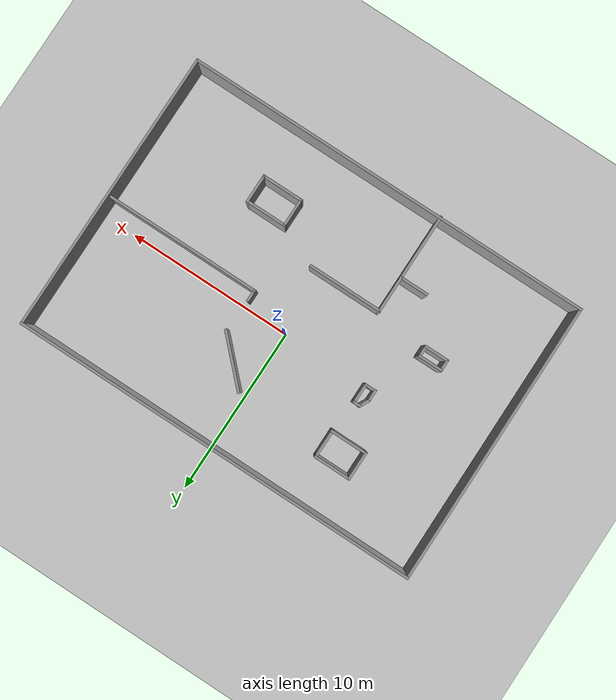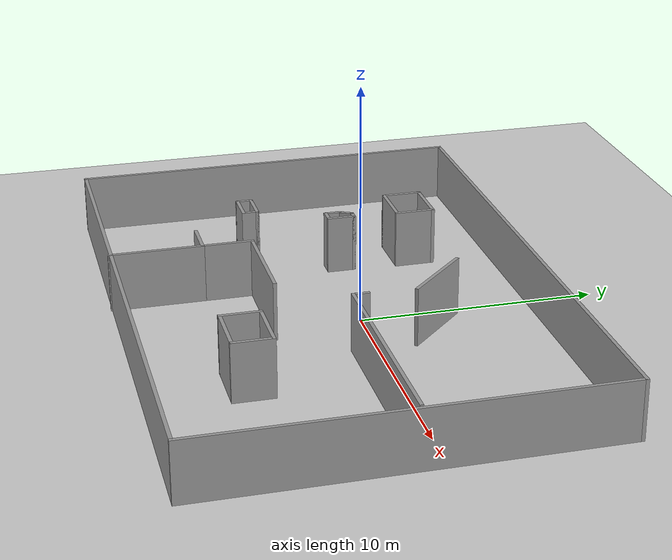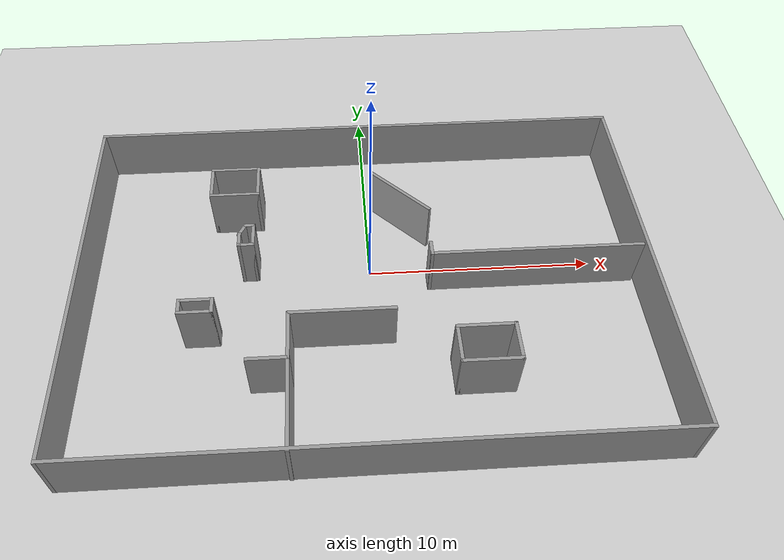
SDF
<?xml version="1.0" ?>
<sdf version="1.5">
  <world name="default">
    <!-- A global light source -->
    <include>
      <uri>model://sun</uri>
    </include>
    <!-- A ground plane -->
    <include>
      <uri>model://ground_plane</uri>
    </include>

    <include>
      <uri>model://slam_test_world/model.sdf</uri>
    </include>

  </world>
</sdf>

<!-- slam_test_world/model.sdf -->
<sdf version='1.6'>
  <model name='slam_test_world'>
    <pose frame=''>-0.236046 -1.23604 0 0 -0 0</pose>
    <link name='Wall_14'>
      <collision name='Wall_14_Collision'>
        <geometry>
          <box>
            <size>17 0.15 2.5</size>
          </box>
        </geometry>
        <pose frame=''>0 0 1.25 0 -0 0</pose>
      </collision>
      <visual name='Wall_14_Visual'>
        <pose frame=''>0 0 1.25 0 -0 0</pose>
        <geometry>
          <box>
            <size>17 0.15 2.5</size>
          </box>
        </geometry>
        <material>
          <script>
            <uri>file://media/materials/scripts/gazebo.material</uri>
            <name>Gazebo/Grey</name>
          </script>
          <ambient>1 1 1 1</ambient>
        </material>
        <meta>
          <layer>0</layer>
        </meta>
      </visual>
      <pose frame=''>-12.175 0.024197 0 0 -0 -1.5708</pose>
    </link>
    <link name='Wall_15'>
      <collision name='Wall_15_Collision'>
        <geometry>
          <box>
            <size>24.5 0.15 2.5</size>
          </box>
        </geometry>
        <pose frame=''>0 0 1.25 0 -0 0</pose>
      </collision>
      <visual name='Wall_15_Visual'>
        <pose frame=''>0 0 1.25 0 -0 0</pose>
        <geometry>
          <box>
            <size>24.5 0.15 2.5</size>
          </box>
        </geometry>
        <material>
          <script>
            <uri>file://media/materials/scripts/gazebo.material</uri>
            <name>Gazebo/Grey</name>
          </script>
          <ambient>1 1 1 1</ambient>
        </material>
        <meta>
          <layer>0</layer>
        </meta>
      </visual>
      <pose frame=''>-0 -8.4008 0 0 -0 0</pose>
    </link>
    <link name='Wall_16'>
      <collision name='Wall_16_Collision'>
        <geometry>
          <box>
            <size>17 0.15 2.5</size>
          </box>
        </geometry>
        <pose frame=''>0 0 1.25 0 -0 0</pose>
      </collision>
      <visual name='Wall_16_Visual'>
        <pose frame=''>0 0 1.25 0 -0 0</pose>
        <geometry>
          <box>
            <size>17 0.15 2.5</size>
          </box>
        </geometry>
        <material>
          <script>
            <uri>file://media/materials/scripts/gazebo.material</uri>
            <name>Gazebo/Grey</name>
          </script>
          <ambient>1 1 1 1</ambient>
        </material>
        <meta>
          <layer>0</layer>
        </meta>
      </visual>
      <pose frame=''>12.175 0.024197 0 0 -0 1.5708</pose>
    </link>
    <link name='Wall_17'>
      <collision name='Wall_17_Collision'>
        <geometry>
          <box>
            <size>24.5 0.15 2.5</size>
          </box>
        </geometry>
        <pose frame=''>0 0 1.25 0 -0 0</pose>
      </collision>
      <visual name='Wall_17_Visual'>
        <pose frame=''>0 0 1.25 0 -0 0</pose>
        <geometry>
          <box>
            <size>24.5 0.15 2.5</size>
          </box>
        </geometry>
        <material>
          <script>
            <uri>file://media/materials/scripts/gazebo.material</uri>
            <name>Gazebo/Grey</name>
          </script>
          <ambient>1 1 1 1</ambient>
        </material>
        <meta>
          <layer>0</layer>
        </meta>
      </visual>
      <pose frame=''>-0 8.4492 0 0 -0 3.14159</pose>
    </link>
    <link name='Wall_19'>
      <collision name='Wall_19_Collision'>
        <geometry>
          <box>
            <size>1.75 0.15 2.5</size>
          </box>
        </geometry>
        <pose frame=''>0 0 1.25 0 -0 0</pose>
      </collision>
      <visual name='Wall_19_Visual'>
        <pose frame=''>0 0 1.25 0 -0 0</pose>
        <geometry>
          <box>
            <size>1.75 0.15 2.5</size>
          </box>
        </geometry>
        <material>
          <script>
            <uri>file://media/materials/scripts/gazebo.material</uri>
            <name>Gazebo/Grey</name>
          </script>
          <ambient>1 1 1 1</ambient>
        </material>
        <meta>
          <layer>0</layer>
        </meta>
      </visual>
      <pose frame=''>-6.79681 4.99945 0 0 -0 -1.5708</pose>
    </link>
    <link name='Wall_20'>
      <collision name='Wall_20_Collision'>
        <geometry>
          <box>
            <size>2.25 0.15 2.5</size>
          </box>
        </geometry>
        <pose frame=''>0 0 1.25 0 -0 0</pose>
      </collision>
      <visual name='Wall_20_Visual'>
        <pose frame=''>0 0 1.25 0 -0 0</pose>
        <geometry>
          <box>
            <size>2.25 0.15 2.5</size>
          </box>
        </geometry>
        <material>
          <script>
            <uri>file://media/materials/scripts/gazebo.material</uri>
            <name>Gazebo/Grey</name>
          </script>
          <ambient>1 1 1 1</ambient>
        </material>
        <meta>
          <layer>0</layer>
        </meta>
      </visual>
      <pose frame=''>-5.74681 4.19945 0 0 -0 0</pose>
    </link>
    <link name='Wall_21'>
      <collision name='Wall_21_Collision'>
        <geometry>
          <box>
            <size>1.75 0.15 2.5</size>
          </box>
        </geometry>
        <pose frame=''>0 0 1.25 0 -0 0</pose>
      </collision>
      <visual name='Wall_21_Visual'>
        <pose frame=''>0 0 1.25 0 -0 0</pose>
        <geometry>
          <box>
            <size>1.75 0.15 2.5</size>
          </box>
        </geometry>
        <material>
          <script>
            <uri>file://media/materials/scripts/gazebo.material</uri>
            <name>Gazebo/Grey</name>
          </script>
          <ambient>1 1 1 1</ambient>
        </material>
        <meta>
          <layer>0</layer>
        </meta>
      </visual>
      <pose frame=''>-4.69681 4.99945 0 0 -0 1.5708</pose>
    </link>
    <link name='Wall_22'>
      <collision name='Wall_22_Collision'>
        <geometry>
          <box>
            <size>2.25 0.15 2.5</size>
          </box>
        </geometry>
        <pose frame=''>0 0 1.25 0 -0 0</pose>
      </collision>
      <visual name='Wall_22_Visual'>
        <pose frame=''>0 0 1.25 0 -0 0</pose>
        <geometry>
          <box>
            <size>2.25 0.15 2.5</size>
          </box>
        </geometry>
        <material>
          <script>
            <uri>file://media/materials/scripts/gazebo.material</uri>
            <name>Gazebo/Grey</name>
          </script>
          <ambient>1 1 1 1</ambient>
        </material>
        <meta>
          <layer>0</layer>
        </meta>
      </visual>
      <pose frame=''>-5.74681 5.79945 0 0 -0 3.14159</pose>
    </link>
    <link name='Wall_24'>
      <collision name='Wall_24_Collision'>
        <geometry>
          <box>
            <size>1.75 0.15 2.5</size>
          </box>
        </geometry>
        <pose frame=''>0 0 1.25 0 -0 0</pose>
      </collision>
      <visual name='Wall_24_Visual'>
        <pose frame=''>0 0 1.25 0 -0 0</pose>
        <geometry>
          <box>
            <size>1.75 0.15 2.5</size>
          </box>
        </geometry>
        <material>
          <script>
            <uri>file://media/materials/scripts/gazebo.material</uri>
            <name>Gazebo/Grey</name>
          </script>
          <ambient>1 1 1 1</ambient>
        </material>
        <meta>
          <layer>0</layer>
        </meta>
      </visual>
      <pose frame=''>3.40865 -4.34024 0 0 -0 -1.5708</pose>
    </link>
    <link name='Wall_25'>
      <collision name='Wall_25_Collision'>
        <geometry>
          <box>
            <size>2.5 0.15 2.5</size>
          </box>
        </geometry>
        <pose frame=''>0 0 1.25 0 -0 0</pose>
      </collision>
      <visual name='Wall_25_Visual'>
        <pose frame=''>0 0 1.25 0 -0 0</pose>
        <geometry>
          <box>
            <size>2.5 0.15 2.5</size>
          </box>
        </geometry>
        <material>
          <script>
            <uri>file://media/materials/scripts/gazebo.material</uri>
            <name>Gazebo/Grey</name>
          </script>
          <ambient>1 1 1 1</ambient>
        </material>
        <meta>
          <layer>0</layer>
        </meta>
      </visual>
      <pose frame=''>4.58364 -5.14024 0 0 -0 0</pose>
    </link>
    <link name='Wall_26'>
      <collision name='Wall_26_Collision'>
        <geometry>
          <box>
            <size>1.75 0.15 2.5</size>
          </box>
        </geometry>
        <pose frame=''>0 0 1.25 0 -0 0</pose>
      </collision>
      <visual name='Wall_26_Visual'>
        <pose frame=''>0 0 1.25 0 -0 0</pose>
        <geometry>
          <box>
            <size>1.75 0.15 2.5</size>
          </box>
        </geometry>
        <material>
          <script>
            <uri>file://media/materials/scripts/gazebo.material</uri>
            <name>Gazebo/Grey</name>
          </script>
          <ambient>1 1 1 1</ambient>
        </material>
        <meta>
          <layer>0</layer>
        </meta>
      </visual>
      <pose frame=''>5.75865 -4.34024 0 0 -0 1.5708</pose>
    </link>
    <link name='Wall_27'>
      <collision name='Wall_27_Collision'>
        <geometry>
          <box>
            <size>2.5 0.15 2.5</size>
          </box>
        </geometry>
        <pose frame=''>0 0 1.25 0 -0 0</pose>
      </collision>
      <visual name='Wall_27_Visual'>
        <pose frame=''>0 0 1.25 0 -0 0</pose>
        <geometry>
          <box>
            <size>2.5 0.15 2.5</size>
          </box>
        </geometry>
        <material>
          <script>
            <uri>file://media/materials/scripts/gazebo.material</uri>
            <name>Gazebo/Grey</name>
          </script>
          <ambient>1 1 1 1</ambient>
        </material>
        <meta>
          <layer>0</layer>
        </meta>
      </visual>
      <pose frame=''>4.58364 -3.54024 0 0 -0 3.14159</pose>
    </link>
    <link name='Wall_29'>
      <collision name='Wall_29_Collision'>
        <geometry>
          <box>
            <size>3.5 0.15 2.5</size>
          </box>
        </geometry>
        <pose frame=''>0 0 1.25 0 -0 0</pose>
      </collision>
      <visual name='Wall_29_Visual'>
        <pose frame=''>0 0 1.25 0 -0 0</pose>
        <geometry>
          <box>
            <size>3.5 0.15 2.5</size>
          </box>
        </geometry>
        <material>
          <script>
            <uri>file://media/materials/scripts/gazebo.material</uri>
            <name>Gazebo/Grey</name>
          </script>
          <ambient>1 1 1 1</ambient>
        </material>
        <meta>
          <layer>0</layer>
        </meta>
      </visual>
      <pose frame=''>1.75966 4.01164 0 0 -0 -0.785398</pose>
    </link>
    <link name='Wall_31'>
      <collision name='Wall_31_Collision'>
        <geometry>
          <box>
            <size>0.75 0.15 2.5</size>
          </box>
        </geometry>
        <pose frame=''>0 0 1.25 0 -0 0</pose>
      </collision>
      <visual name='Wall_31_Visual'>
        <pose frame=''>0 0 1.25 0 -0 0</pose>
        <geometry>
          <box>
            <size>0.75 0.15 2.5</size>
          </box>
        </geometry>
        <material>
          <script>
            <uri>file://media/materials/scripts/gazebo.material</uri>
            <name>Gazebo/Grey</name>
          </script>
          <ambient>1 1 1 1</ambient>
        </material>
        <meta>
          <layer>0</layer>
        </meta>
      </visual>
      <pose frame=''>-7.74127 -1.95131 0 0 -0 -1.5708</pose>
    </link>
    <link name='Wall_32'>
      <collision name='Wall_32_Collision'>
        <geometry>
          <box>
            <size>1.5 0.15 2.5</size>
          </box>
        </geometry>
        <pose frame=''>0 0 1.25 0 -0 0</pose>
      </collision>
      <visual name='Wall_32_Visual'>
        <pose frame=''>0 0 1.25 0 -0 0</pose>
        <geometry>
          <box>
            <size>1.5 0.15 2.5</size>
          </box>
        </geometry>
        <material>
          <script>
            <uri>file://media/materials/scripts/gazebo.material</uri>
            <name>Gazebo/Grey</name>
          </script>
          <ambient>1 1 1 1</ambient>
        </material>
        <meta>
          <layer>0</layer>
        </meta>
      </visual>
      <pose frame=''>-7.06627 -2.25131 0 0 -0 0</pose>
    </link>
    <link name='Wall_33'>
      <collision name='Wall_33_Collision'>
        <geometry>
          <box>
            <size>0.75 0.15 2.5</size>
          </box>
        </geometry>
        <pose frame=''>0 0 1.25 0 -0 0</pose>
      </collision>
      <visual name='Wall_33_Visual'>
        <pose frame=''>0 0 1.25 0 -0 0</pose>
        <geometry>
          <box>
            <size>0.75 0.15 2.5</size>
          </box>
        </geometry>
        <material>
          <script>
            <uri>file://media/materials/scripts/gazebo.material</uri>
            <name>Gazebo/Grey</name>
          </script>
          <ambient>1 1 1 1</ambient>
        </material>
        <meta>
          <layer>0</layer>
        </meta>
      </visual>
      <pose frame=''>-6.39127 -1.95131 0 0 -0 1.5708</pose>
    </link>
    <link name='Wall_34'>
      <collision name='Wall_34_Collision'>
        <geometry>
          <box>
            <size>1.5 0.15 2.5</size>
          </box>
        </geometry>
        <pose frame=''>0 0 1.25 0 -0 0</pose>
      </collision>
      <visual name='Wall_34_Visual'>
        <pose frame=''>0 0 1.25 0 -0 0</pose>
        <geometry>
          <box>
            <size>1.5 0.15 2.5</size>
          </box>
        </geometry>
        <material>
          <script>
            <uri>file://media/materials/scripts/gazebo.material</uri>
            <name>Gazebo/Grey</name>
          </script>
          <ambient>1 1 1 1</ambient>
        </material>
        <meta>
          <layer>0</layer>
        </meta>
      </visual>
      <pose frame=''>-7.06627 -1.65131 0 0 -0 3.14159</pose>
    </link>
    <link name='Wall_37'>
      <collision name='Wall_37_Collision'>
        <geometry>
          <box>
            <size>0.75 0.15 2.5</size>
          </box>
        </geometry>
        <pose frame=''>0 0 1.25 0 -0 0</pose>
      </collision>
      <visual name='Wall_37_Visual'>
        <pose frame=''>0 0 1.25 0 -0 0</pose>
        <geometry>
          <box>
            <size>0.75 0.15 2.5</size>
          </box>
        </geometry>
        <material>
          <script>
            <uri>file://media/materials/scripts/gazebo.material</uri>
            <name>Gazebo/Grey</name>
          </script>
          <ambient>1 1 1 1</ambient>
        </material>
        <meta>
          <layer>0</layer>
        </meta>
      </visual>
      <pose frame=''>2.82709 0.548061 0 0 -0 -1.5708</pose>
    </link>
    <link name='Wall_38'>
      <collision name='Wall_38_Collision'>
        <geometry>
          <box>
            <size>9.25 0.15 2.5</size>
          </box>
        </geometry>
        <pose frame=''>0 0 1.25 0 -0 0</pose>
      </collision>
      <visual name='Wall_38_Visual'>
        <pose frame=''>0 0 1.25 0 -0 0</pose>
        <geometry>
          <box>
            <size>9.25 0.15 2.5</size>
          </box>
        </geometry>
        <material>
          <script>
            <uri>file://media/materials/scripts/gazebo.material</uri>
            <name>Gazebo/Grey</name>
          </script>
          <ambient>1 1 1 1</ambient>
        </material>
        <meta>
          <layer>0</layer>
        </meta>
      </visual>
      <pose frame=''>7.37709 0.248061 0 0 -0 0</pose>
    </link>
    <link name='Wall_40'>
      <collision name='Wall_40_Collision'>
        <geometry>
          <box>
            <size>1.75 0.15 2.5</size>
          </box>
        </geometry>
        <pose frame=''>0 0 1.25 0 -0 0</pose>
      </collision>
      <visual name='Wall_40_Visual'>
        <pose frame=''>0 0 1.25 0 -0 0</pose>
        <geometry>
          <box>
            <size>1.75 0.15 2.5</size>
          </box>
        </geometry>
        <material>
          <script>
            <uri>file://media/materials/scripts/gazebo.material</uri>
            <name>Gazebo/Grey</name>
          </script>
          <ambient>1 1 1 1</ambient>
        </material>
        <meta>
          <layer>0</layer>
        </meta>
      </visual>
      <pose frame=''>-4.1101 -4.5992 0 0 -0 0</pose>
    </link>
    <link name='Wall_41'>
      <collision name='Wall_41_Collision'>
        <geometry>
          <box>
            <size>4 0.15 2.5</size>
          </box>
        </geometry>
        <pose frame=''>0 0 1.25 0 -0 0</pose>
      </collision>
      <visual name='Wall_41_Visual'>
        <pose frame=''>0 0 1.25 0 -0 0</pose>
        <geometry>
          <box>
            <size>4 0.15 2.5</size>
          </box>
        </geometry>
        <material>
          <script>
            <uri>file://media/materials/scripts/gazebo.material</uri>
            <name>Gazebo/Grey</name>
          </script>
          <ambient>1 1 1 1</ambient>
        </material>
        <meta>
          <layer>0</layer>
        </meta>
      </visual>
      <pose frame=''>-3.3101 -6.5242 0 0 -0 -1.5708</pose>
    </link>
    <link name='Wall_43'>
      <collision name='Wall_43_Collision'>
        <geometry>
          <box>
            <size>2.25 0.15 2.5</size>
          </box>
        </geometry>
        <pose frame=''>0 0 1.25 0 -0 0</pose>
      </collision>
      <visual name='Wall_43_Visual'>
        <pose frame=''>0 0 1.25 0 -0 0</pose>
        <geometry>
          <box>
            <size>2.25 0.15 2.5</size>
          </box>
        </geometry>
        <material>
          <script>
            <uri>file://media/materials/scripts/gazebo.material</uri>
            <name>Gazebo/Grey</name>
          </script>
          <ambient>1 1 1 1</ambient>
        </material>
        <meta>
          <layer>0</layer>
        </meta>
      </visual>
      <pose frame=''>-3.3101 -3.5492 0 0 -0 1.5708</pose>
    </link>
    <link name='Wall_44'>
      <collision name='Wall_44_Collision'>
        <geometry>
          <box>
            <size>4.5 0.15 2.5</size>
          </box>
        </geometry>
        <pose frame=''>0 0 1.25 0 -0 0</pose>
      </collision>
      <visual name='Wall_44_Visual'>
        <pose frame=''>0 0 1.25 0 -0 0</pose>
        <geometry>
          <box>
            <size>4.5 0.15 2.5</size>
          </box>
        </geometry>
        <material>
          <script>
            <uri>file://media/materials/scripts/gazebo.material</uri>
            <name>Gazebo/Grey</name>
          </script>
          <ambient>1 1 1 1</ambient>
        </material>
        <meta>
          <layer>0</layer>
        </meta>
      </visual>
      <pose frame=''>-1.1351 -2.4992 0 0 -0 0</pose>
    </link>
    <link name='Wall_46'>
      <collision name='Wall_46_Collision'>
        <geometry>
          <box>
            <size>0.75 0.15 2.5</size>
          </box>
        </geometry>
        <pose frame=''>0 0 1.25 0 -0 0</pose>
      </collision>
      <visual name='Wall_46_Visual'>
        <pose frame=''>0 0 1.25 0 -0 0</pose>
        <geometry>
          <box>
            <size>0.75 0.15 2.5</size>
          </box>
        </geometry>
        <material>
          <script>
            <uri>file://media/materials/scripts/gazebo.material</uri>
            <name>Gazebo/Grey</name>
          </script>
          <ambient>1 1 1 1</ambient>
        </material>
        <meta>
          <layer>0</layer>
        </meta>
      </visual>
      <pose frame=''>-5.43054 1.48485 0 0 -0 -1.5708</pose>
    </link>
    <link name='Wall_47'>
      <collision name='Wall_47_Collision'>
        <geometry>
          <box>
            <size>0.75 0.15 2.5</size>
          </box>
        </geometry>
        <pose frame=''>0 0 1.25 0 -0 0</pose>
      </collision>
      <visual name='Wall_47_Visual'>
        <pose frame=''>0 0 1.25 0 -0 0</pose>
        <geometry>
          <box>
            <size>0.75 0.15 2.5</size>
          </box>
        </geometry>
        <material>
          <script>
            <uri>file://media/materials/scripts/gazebo.material</uri>
            <name>Gazebo/Grey</name>
          </script>
          <ambient>1 1 1 1</ambient>
        </material>
        <meta>
          <layer>0</layer>
        </meta>
      </visual>
      <pose frame=''>-5.13054 1.18485 0 0 -0 0</pose>
    </link>
    <link name='Wall_48'>
      <collision name='Wall_48_Collision'>
        <geometry>
          <box>
            <size>1.25 0.15 2.5</size>
          </box>
        </geometry>
        <pose frame=''>0 0 1.25 0 -0 0</pose>
      </collision>
      <visual name='Wall_48_Visual'>
        <pose frame=''>0 0 1.25 0 -0 0</pose>
        <geometry>
          <box>
            <size>1.25 0.15 2.5</size>
          </box>
        </geometry>
        <material>
          <script>
            <uri>file://media/materials/scripts/gazebo.material</uri>
            <name>Gazebo/Grey</name>
          </script>
          <ambient>1 1 1 1</ambient>
        </material>
        <meta>
          <layer>0</layer>
        </meta>
      </visual>
      <pose frame=''>-4.83054 1.73485 0 0 -0 1.5708</pose>
    </link>
    <link name='Wall_49'>
      <collision name='Wall_49_Collision'>
        <geometry>
          <box>
            <size>0.5 0.15 2.5</size>
          </box>
        </geometry>
        <pose frame=''>0 0 1.25 0 -0 0</pose>
      </collision>
      <visual name='Wall_49_Visual'>
        <pose frame=''>0 0 1.25 0 -0 0</pose>
        <geometry>
          <box>
            <size>0.5 0.15 2.5</size>
          </box>
        </geometry>
        <material>
          <script>
            <uri>file://media/materials/scripts/gazebo.material</uri>
            <name>Gazebo/Grey</name>
          </script>
          <ambient>1 1 1 1</ambient>
        </material>
        <meta>
          <layer>0</layer>
        </meta>
      </visual>
      <pose frame=''>-5.00554 2.28485 0 0 -0 3.14159</pose>
    </link>
    <link name='Wall_50'>
      <collision name='Wall_50_Collision'>
        <geometry>
          <box>
            <size>0.709017 0.15 2.5</size>
          </box>
        </geometry>
        <pose frame=''>0 0 1.25 0 -0 0</pose>
      </collision>
      <visual name='Wall_50_Visual'>
        <pose frame=''>0 0 1.25 0 -0 0</pose>
        <geometry>
          <box>
            <size>0.709017 0.15 2.5</size>
          </box>
        </geometry>
        <material>
          <script>
            <uri>file://media/materials/scripts/gazebo.material</uri>
            <name>Gazebo/Grey</name>
          </script>
          <ambient>1 1 1 1</ambient>
        </material>
        <meta>
          <layer>0</layer>
        </meta>
      </visual>
      <pose frame=''>-5.30554 2.03485 0 0 -0 -2.03444</pose>
    </link>
    <static>1</static>
  </model>
</sdf>
